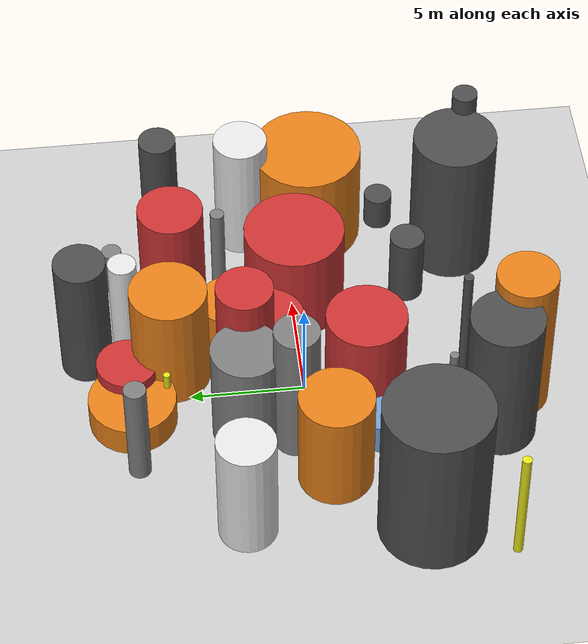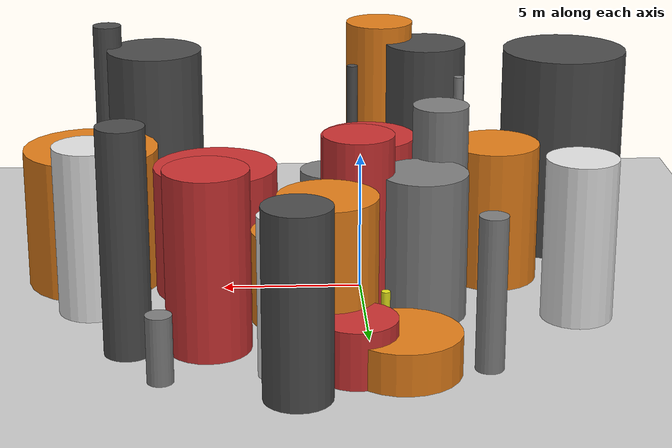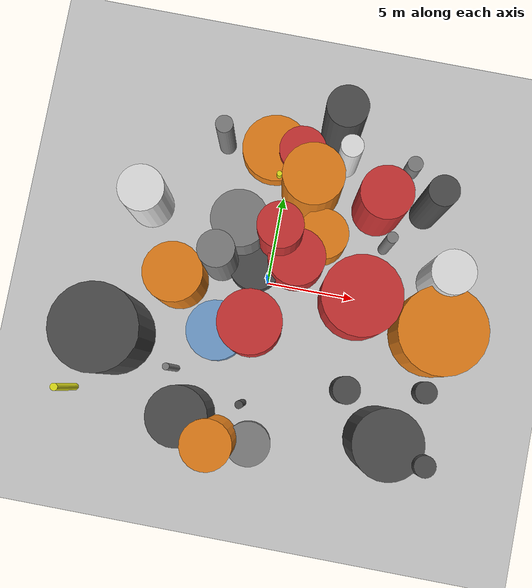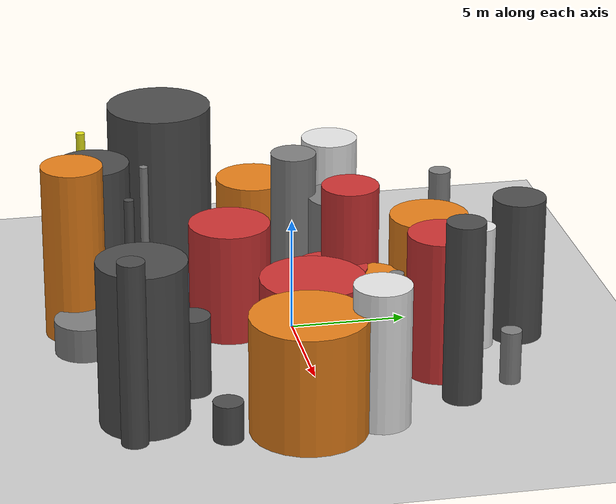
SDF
<?xml version='1.0'?>
<sdf version='1.6'>
  <world name='default'>
    <!-- Sun light -->
    <light name='sun' type='directional'>
      <cast_shadows>1</cast_shadows>
      <pose>0 0 10 0 0 0</pose>
      <diffuse>0.8 0.8 0.8 1</diffuse>
      <specular>0.2 0.2 0.2 1</specular>
      <attenuation>
        <range>1000</range>
        <constant>0.9</constant>
        <linear>0.01</linear>
        <quadratic>0.001</quadratic>
      </attenuation>
      <direction>-0.5 0.1 -0.9</direction>
    </light>

    <!-- Ground plane -->
    <model name='ground_plane'>
      <static>1</static>
      <link name='link'>
        <collision name='collision'>
          <geometry>
            <plane>
              <normal>0 0 1</normal>
              <size>100 100</size>
            </plane>
          </geometry>
          <surface>
            <contact>
              <collide_bitmask>65535</collide_bitmask>
              <ode/>
            </contact>
            <friction>
              <ode>
                <mu>100</mu>
                <mu2>50</mu2>
              </ode>
              <torsional><ode/></torsional>
            </friction>
            <bounce/>
          </surface>
          <max_contacts>10</max_contacts>
        </collision>
        <visual name='visual'>
          <cast_shadows>0</cast_shadows>
          <geometry>
            <plane>
              <normal>0 0 1</normal>
              <size>100 100</size>
            </plane>
          </geometry>
          <material>
            <script>
              <uri>file://media/materials/scripts/gazebo.material</uri>
              <n>Gazebo/Grey</n>
            </script>
          </material>
        </visual>
      </link>
    </model>

    <!-- Environment -->
    <magnetic_field>6e-06 2.3e-05 -4.2e-05</magnetic_field>
    <atmosphere type='adiabatic'/>
    <physics name='default_physics' default='0' type='ode'>
      <gravity>0 0 -9.8</gravity>
      <max_step_size>0.004</max_step_size>
      <real_time_factor>1</real_time_factor>
      <real_time_update_rate>250</real_time_update_rate>
    </physics>
    <scene>
      <ambient>0.4 0.4 0.4 1</ambient>
      <background>0.7 0.7 0.7 1</background>
      <shadows>1</shadows>
    </scene>
    <wind/>
    <spherical_coordinates>
      <surface_model>EARTH_WGS84</surface_model>
      <latitude_deg>0</latitude_deg>
      <longitude_deg>0</longitude_deg>
      <elevation>0</elevation>
      <heading_deg>0</heading_deg>
    </spherical_coordinates>

    <!-- ============ OBSTACLES (35) ============ -->
    <model name='obs_00'>
      <static>1</static>
      <link name='link'>
        <visual name='visual'>
          <geometry>
            <cylinder>
              <radius>0.2027</radius>
              <length>5.9736</length>
            </cylinder>
          </geometry>
          <material>
            <script>
              <n>Gazebo/Yellow</n>
              <uri>file://media/materials/scripts/gazebo.material</uri>
            </script>
            <ambient>0.9 0.9 0.1 1</ambient>
          </material>
        </visual>
        <collision name='collision'>
          <geometry>
            <cylinder>
              <radius>0.2027</radius>
              <length>5.9736</length>
            </cylinder>
          </geometry>
          <max_contacts>10</max_contacts>
          <surface>
            <contact><ode/></contact>
            <bounce/>
            <friction>
              <ode><mu>1</mu><mu2>1</mu2></ode>
              <torsional><ode/></torsional>
            </friction>
          </surface>
        </collision>
      </link>
      <pose>-9.7044 -7.9065 2.9868 0 0 2.7695</pose>
    </model>

    <model name='obs_01'>
      <static>1</static>
      <link name='link'>
        <visual name='visual'>
          <geometry>
            <cylinder>
              <radius>0.1514</radius>
              <length>2.1968</length>
            </cylinder>
          </geometry>
          <material>
            <script>
              <n>Gazebo/Yellow</n>
              <uri>file://media/materials/scripts/gazebo.material</uri>
            </script>
            <ambient>0.9 0.9 0.1 1</ambient>
          </material>
        </visual>
        <collision name='collision'>
          <geometry>
            <cylinder>
              <radius>0.1514</radius>
              <length>2.1968</length>
            </cylinder>
          </geometry>
          <max_contacts>10</max_contacts>
          <surface>
            <contact><ode/></contact>
            <bounce/>
            <friction>
              <ode><mu>1</mu><mu2>1</mu2></ode>
              <torsional><ode/></torsional>
            </friction>
          </surface>
        </collision>
      </link>
      <pose>-0.4543 6.0108 1.0984 0 0 1.8498</pose>
    </model>

    <model name='obs_02'>
      <static>1</static>
      <link name='link'>
        <visual name='visual'>
          <geometry>
            <cylinder>
              <radius>0.5633</radius>
              <length>7.9312</length>
            </cylinder>
          </geometry>
          <material>
            <script>
              <n>Gazebo/DarkGrey</n>
              <uri>file://media/materials/scripts/gazebo.material</uri>
            </script>
            <ambient>0.3 0.3 0.3 1</ambient>
          </material>
        </visual>
        <collision name='collision'>
          <geometry>
            <cylinder>
              <radius>0.5633</radius>
              <length>7.9312</length>
            </cylinder>
          </geometry>
          <max_contacts>10</max_contacts>
          <surface>
            <contact><ode/></contact>
            <bounce/>
            <friction>
              <ode><mu>1</mu><mu2>1</mu2></ode>
              <torsional><ode/></torsional>
            </friction>
          </surface>
        </collision>
      </link>
      <pose>9.5435 -8.2515 3.9656 0 0 2.5671</pose>
    </model>

    <model name='obs_03'>
      <static>1</static>
      <link name='link'>
        <visual name='visual'>
          <geometry>
            <cylinder>
              <radius>0.6280</radius>
              <length>5.4842</length>
            </cylinder>
          </geometry>
          <material>
            <script>
              <n>Gazebo/White</n>
              <uri>file://media/materials/scripts/gazebo.material</uri>
            </script>
            <ambient>0.9 0.9 0.9 1</ambient>
          </material>
        </visual>
        <collision name='collision'>
          <geometry>
            <cylinder>
              <radius>0.6280</radius>
              <length>5.4842</length>
            </cylinder>
          </geometry>
          <max_contacts>10</max_contacts>
          <surface>
            <contact><ode/></contact>
            <bounce/>
            <friction>
              <ode><mu>1</mu><mu2>1</mu2></ode>
              <torsional><ode/></torsional>
            </friction>
          </surface>
        </collision>
      </link>
      <pose>3.1915 7.5561 2.7421 0 0 0.0917</pose>
    </model>

    <model name='obs_04'>
      <static>1</static>
      <link name='link'>
        <visual name='visual'>
          <geometry>
            <cylinder>
              <radius>0.1883</radius>
              <length>6.3114</length>
            </cylinder>
          </geometry>
          <material>
            <script>
              <n>Gazebo/Grey</n>
              <uri>file://media/materials/scripts/gazebo.material</uri>
            </script>
            <ambient>0.5 0.5 0.5 1</ambient>
          </material>
        </visual>
        <collision name='collision'>
          <geometry>
            <cylinder>
              <radius>0.1883</radius>
              <length>6.3114</length>
            </cylinder>
          </geometry>
          <max_contacts>10</max_contacts>
          <surface>
            <contact><ode/></contact>
            <bounce/>
            <friction>
              <ode><mu>1</mu><mu2>1</mu2></ode>
              <torsional><ode/></torsional>
            </friction>
          </surface>
        </collision>
      </link>
      <pose>-4.2014 -5.7902 3.1557 0 0 1.3536</pose>
    </model>

    <model name='obs_05'>
      <static>1</static>
      <link name='link'>
        <visual name='visual'>
          <geometry>
            <cylinder>
              <radius>1.8626</radius>
              <length>7.1051</length>
            </cylinder>
          </geometry>
          <material>
            <script>
              <n>Gazebo/DarkGrey</n>
              <uri>file://media/materials/scripts/gazebo.material</uri>
            </script>
            <ambient>0.3 0.3 0.3 1</ambient>
          </material>
        </visual>
        <collision name='collision'>
          <geometry>
            <cylinder>
              <radius>1.8626</radius>
              <length>7.1051</length>
            </cylinder>
          </geometry>
          <max_contacts>10</max_contacts>
          <surface>
            <contact><ode/></contact>
            <bounce/>
            <friction>
              <ode><mu>1</mu><mu2>1</mu2></ode>
              <torsional><ode/></torsional>
            </friction>
          </surface>
        </collision>
      </link>
      <pose>7.6689 -7.5800 3.5525 0 0 0.1262</pose>
    </model>

    <model name='obs_06'>
      <static>1</static>
      <link name='link'>
        <visual name='visual'>
          <geometry>
            <cylinder>
              <radius>0.6296</radius>
              <length>1.6629</length>
            </cylinder>
          </geometry>
          <material>
            <script>
              <n>Gazebo/DarkGrey</n>
              <uri>file://media/materials/scripts/gazebo.material</uri>
            </script>
            <ambient>0.3 0.3 0.3 1</ambient>
          </material>
        </visual>
        <collision name='collision'>
          <geometry>
            <cylinder>
              <radius>0.6296</radius>
              <length>1.6629</length>
            </cylinder>
          </geometry>
          <max_contacts>10</max_contacts>
          <surface>
            <contact><ode/></contact>
            <bounce/>
            <friction>
              <ode><mu>1</mu><mu2>1</mu2></ode>
              <torsional><ode/></torsional>
            </friction>
          </surface>
        </collision>
      </link>
      <pose>9.8629 -4.5250 0.8314 0 0 2.9250</pose>
    </model>

    <model name='obs_07'>
      <static>1</static>
      <link name='link'>
        <visual name='visual'>
          <geometry>
            <cylinder>
              <radius>0.2138</radius>
              <length>6.4967</length>
            </cylinder>
          </geometry>
          <material>
            <script>
              <n>Gazebo/DarkGrey</n>
              <uri>file://media/materials/scripts/gazebo.material</uri>
            </script>
            <ambient>0.3 0.3 0.3 1</ambient>
          </material>
        </visual>
        <collision name='collision'>
          <geometry>
            <cylinder>
              <radius>0.2138</radius>
              <length>6.4967</length>
            </cylinder>
          </geometry>
          <max_contacts>10</max_contacts>
          <surface>
            <contact><ode/></contact>
            <bounce/>
            <friction>
              <ode><mu>1</mu><mu2>1</mu2></ode>
              <torsional><ode/></torsional>
            </friction>
          </surface>
        </collision>
      </link>
      <pose>-0.1267 -7.0074 3.2483 0 0 3.1089</pose>
    </model>

    <model name='obs_08'>
      <static>1</static>
      <link name='link'>
        <visual name='visual'>
          <geometry>
            <cylinder>
              <radius>1.4454</radius>
              <length>6.3007</length>
            </cylinder>
          </geometry>
          <material>
            <script>
              <n>Gazebo/Red</n>
              <uri>file://media/materials/scripts/gazebo.material</uri>
            </script>
            <ambient>0.8 0.2 0.2 1</ambient>
          </material>
        </visual>
        <collision name='collision'>
          <geometry>
            <cylinder>
              <radius>1.4454</radius>
              <length>6.3007</length>
            </cylinder>
          </geometry>
          <max_contacts>10</max_contacts>
          <surface>
            <contact><ode/></contact>
            <bounce/>
            <friction>
              <ode><mu>1</mu><mu2>1</mu2></ode>
              <torsional><ode/></torsional>
            </friction>
          </surface>
        </collision>
      </link>
      <pose>5.4160 5.2780 3.1504 0 0 2.6334</pose>
    </model>

    <model name='obs_09'>
      <static>1</static>
      <link name='link'>
        <visual name='visual'>
          <geometry>
            <cylinder>
              <radius>0.4438</radius>
              <length>2.3286</length>
            </cylinder>
          </geometry>
          <material>
            <script>
              <n>Gazebo/Grey</n>
              <uri>file://media/materials/scripts/gazebo.material</uri>
            </script>
            <ambient>0.5 0.5 0.5 1</ambient>
          </material>
        </visual>
        <collision name='collision'>
          <geometry>
            <cylinder>
              <radius>0.4438</radius>
              <length>2.3286</length>
            </cylinder>
          </geometry>
          <max_contacts>10</max_contacts>
          <surface>
            <contact><ode/></contact>
            <bounce/>
            <friction>
              <ode><mu>1</mu><mu2>1</mu2></ode>
              <torsional><ode/></torsional>
            </friction>
          </surface>
        </collision>
      </link>
      <pose>6.9528 7.9445 1.1643 0 0 1.9928</pose>
    </model>

    <model name='obs_10'>
      <static>1</static>
      <link name='link'>
        <visual name='visual'>
          <geometry>
            <cylinder>
              <radius>1.3351</radius>
              <length>7.7416</length>
            </cylinder>
          </geometry>
          <material>
            <script>
              <n>Gazebo/Orange</n>
              <uri>file://media/materials/scripts/gazebo.material</uri>
            </script>
            <ambient>0.9 0.5 0.1 1</ambient>
          </material>
        </visual>
        <collision name='collision'>
          <geometry>
            <cylinder>
              <radius>1.3351</radius>
              <length>7.7416</length>
            </cylinder>
          </geometry>
          <max_contacts>10</max_contacts>
          <surface>
            <contact><ode/></contact>
            <bounce/>
            <friction>
              <ode><mu>1</mu><mu2>1</mu2></ode>
              <torsional><ode/></torsional>
            </friction>
          </surface>
        </collision>
      </link>
      <pose>-1.3543 -9.2670 3.8708 0 0 2.3790</pose>
    </model>

    <model name='obs_11'>
      <static>1</static>
      <link name='link'>
        <visual name='visual'>
          <geometry>
            <cylinder>
              <radius>1.2668</radius>
              <length>5.8131</length>
            </cylinder>
          </geometry>
          <material>
            <script>
              <n>Gazebo/White</n>
              <uri>file://media/materials/scripts/gazebo.material</uri>
            </script>
            <ambient>0.9 0.9 0.9 1</ambient>
          </material>
        </visual>
        <collision name='collision'>
          <geometry>
            <cylinder>
              <radius>1.2668</radius>
              <length>5.8131</length>
            </cylinder>
          </geometry>
          <max_contacts>10</max_contacts>
          <surface>
            <contact><ode/></contact>
            <bounce/>
            <friction>
              <ode><mu>1</mu><mu2>1</mu2></ode>
              <torsional><ode/></torsional>
            </friction>
          </surface>
        </collision>
      </link>
      <pose>-7.4021 3.1853 2.9065 0 0 0.9909</pose>
    </model>

    <model name='obs_12'>
      <static>1</static>
      <link name='link'>
        <visual name='visual'>
          <geometry>
            <cylinder>
              <radius>0.7710</radius>
              <length>3.4545</length>
            </cylinder>
          </geometry>
          <material>
            <script>
              <n>Gazebo/DarkGrey</n>
              <uri>file://media/materials/scripts/gazebo.material</uri>
            </script>
            <ambient>0.3 0.3 0.3 1</ambient>
          </material>
        </visual>
        <collision name='collision'>
          <geometry>
            <cylinder>
              <radius>0.7710</radius>
              <length>3.4545</length>
            </cylinder>
          </geometry>
          <max_contacts>10</max_contacts>
          <surface>
            <contact><ode/></contact>
            <bounce/>
            <friction>
              <ode><mu>1</mu><mu2>1</mu2></ode>
              <torsional><ode/></torsional>
            </friction>
          </surface>
        </collision>
      </link>
      <pose>5.3550 -5.2282 1.7272 0 0 0.5038</pose>
    </model>

    <model name='obs_13'>
      <static>1</static>
      <link name='link'>
        <visual name='visual'>
          <geometry>
            <cylinder>
              <radius>0.9970</radius>
              <length>7.0183</length>
            </cylinder>
          </geometry>
          <material>
            <script>
              <n>Gazebo/Grey</n>
              <uri>file://media/materials/scripts/gazebo.material</uri>
            </script>
            <ambient>0.5 0.5 0.5 1</ambient>
          </material>
        </visual>
        <collision name='collision'>
          <geometry>
            <cylinder>
              <radius>0.9970</radius>
              <length>7.0183</length>
            </cylinder>
          </geometry>
          <max_contacts>10</max_contacts>
          <surface>
            <contact><ode/></contact>
            <bounce/>
            <friction>
              <ode><mu>1</mu><mu2>1</mu2></ode>
              <torsional><ode/></torsional>
            </friction>
          </surface>
        </collision>
      </link>
      <pose>-2.7921 0.6135 3.5092 0 0 0.2511</pose>
    </model>

    <model name='obs_14'>
      <static>1</static>
      <link name='link'>
        <visual name='visual'>
          <geometry>
            <cylinder>
              <radius>0.4858</radius>
              <length>5.3119</length>
            </cylinder>
          </geometry>
          <material>
            <script>
              <n>Gazebo/Grey</n>
              <uri>file://media/materials/scripts/gazebo.material</uri>
            </script>
            <ambient>0.5 0.5 0.5 1</ambient>
          </material>
        </visual>
        <collision name='collision'>
          <geometry>
            <cylinder>
              <radius>0.4858</radius>
              <length>5.3119</length>
            </cylinder>
          </geometry>
          <max_contacts>10</max_contacts>
          <surface>
            <contact><ode/></contact>
            <bounce/>
            <friction>
              <ode><mu>1</mu><mu2>1</mu2></ode>
              <torsional><ode/></torsional>
            </friction>
          </surface>
        </collision>
      </link>
      <pose>-3.7634 7.4764 2.6560 0 0 2.1366</pose>
    </model>

    <model name='obs_15'>
      <static>1</static>
      <link name='link'>
        <visual name='visual'>
          <geometry>
            <cylinder>
              <radius>1.7696</radius>
              <length>4.9570</length>
            </cylinder>
          </geometry>
          <material>
            <script>
              <n>Gazebo/Red</n>
              <uri>file://media/materials/scripts/gazebo.material</uri>
            </script>
            <ambient>0.8 0.2 0.2 1</ambient>
          </material>
        </visual>
        <collision name='collision'>
          <geometry>
            <cylinder>
              <radius>1.7696</radius>
              <length>4.9570</length>
            </cylinder>
          </geometry>
          <max_contacts>10</max_contacts>
          <surface>
            <contact><ode/></contact>
            <bounce/>
            <friction>
              <ode><mu>1</mu><mu2>1</mu2></ode>
              <torsional><ode/></torsional>
            </friction>
          </surface>
        </collision>
      </link>
      <pose>-0.4502 -2.6448 2.4785 0 0 1.7041</pose>
    </model>

    <model name='obs_16'>
      <static>1</static>
      <link name='link'>
        <visual name='visual'>
          <geometry>
            <cylinder>
              <radius>1.2496</radius>
              <length>6.5737</length>
            </cylinder>
          </geometry>
          <material>
            <script>
              <n>Gazebo/Red</n>
              <uri>file://media/materials/scripts/gazebo.material</uri>
            </script>
            <ambient>0.8 0.2 0.2 1</ambient>
          </material>
        </visual>
        <collision name='collision'>
          <geometry>
            <cylinder>
              <radius>1.2496</radius>
              <length>6.5737</length>
            </cylinder>
          </geometry>
          <max_contacts>10</max_contacts>
          <surface>
            <contact><ode/></contact>
            <bounce/>
            <friction>
              <ode><mu>1</mu><mu2>1</mu2></ode>
              <torsional><ode/></torsional>
            </friction>
          </surface>
        </collision>
      </link>
      <pose>0.2362 2.5130 3.2869 0 0 2.4588</pose>
    </model>

    <model name='obs_17'>
      <static>1</static>
      <link name='link'>
        <visual name='visual'>
          <geometry>
            <cylinder>
              <radius>1.9167</radius>
              <length>1.4402</length>
            </cylinder>
          </geometry>
          <material>
            <script>
              <n>Gazebo/Orange</n>
              <uri>file://media/materials/scripts/gazebo.material</uri>
            </script>
            <ambient>0.9 0.5 0.1 1</ambient>
          </material>
        </visual>
        <collision name='collision'>
          <geometry>
            <cylinder>
              <radius>1.9167</radius>
              <length>1.4402</length>
            </cylinder>
          </geometry>
          <max_contacts>10</max_contacts>
          <surface>
            <contact><ode/></contact>
            <bounce/>
            <friction>
              <ode><mu>1</mu><mu2>1</mu2></ode>
              <torsional><ode/></torsional>
            </friction>
          </surface>
        </collision>
      </link>
      <pose>-0.9557 7.5747 0.7201 0 0 0.0357</pose>
    </model>

    <model name='obs_18'>
      <static>1</static>
      <link name='link'>
        <visual name='visual'>
          <geometry>
            <cylinder>
              <radius>1.2076</radius>
              <length>6.0920</length>
            </cylinder>
          </geometry>
          <material>
            <script>
              <n>Gazebo/White</n>
              <uri>file://media/materials/scripts/gazebo.material</uri>
            </script>
            <ambient>0.9 0.9 0.9 1</ambient>
          </material>
        </visual>
        <collision name='collision'>
          <geometry>
            <cylinder>
              <radius>1.2076</radius>
              <length>6.0920</length>
            </cylinder>
          </geometry>
          <max_contacts>10</max_contacts>
          <surface>
            <contact><ode/></contact>
            <bounce/>
            <friction>
              <ode><mu>1</mu><mu2>1</mu2></ode>
              <torsional><ode/></torsional>
            </friction>
          </surface>
        </collision>
      </link>
      <pose>9.5844 1.8306 3.0460 0 0 0.4189</pose>
    </model>

    <model name='obs_19'>
      <static>1</static>
      <link name='link'>
        <visual name='visual'>
          <geometry>
            <cylinder>
              <radius>1.5060</radius>
              <length>1.4517</length>
            </cylinder>
          </geometry>
          <material>
            <script>
              <n>Gazebo/DarkGrey</n>
              <uri>file://media/materials/scripts/gazebo.material</uri>
            </script>
            <ambient>0.3 0.3 0.3 1</ambient>
          </material>
        </visual>
        <collision name='collision'>
          <geometry>
            <cylinder>
              <radius>1.5060</radius>
              <length>1.4517</length>
            </cylinder>
          </geometry>
          <max_contacts>10</max_contacts>
          <surface>
            <contact><ode/></contact>
            <bounce/>
            <friction>
              <ode><mu>1</mu><mu2>1</mu2></ode>
              <torsional><ode/></torsional>
            </friction>
          </surface>
        </collision>
      </link>
      <pose>-0.8680 0.8048 0.7258 0 0 2.3267</pose>
    </model>

    <model name='obs_20'>
      <static>1</static>
      <link name='link'>
        <visual name='visual'>
          <geometry>
            <cylinder>
              <radius>2.2295</radius>
              <length>4.6600</length>
            </cylinder>
          </geometry>
          <material>
            <script>
              <n>Gazebo/Red</n>
              <uri>file://media/materials/scripts/gazebo.material</uri>
            </script>
            <ambient>0.8 0.2 0.2 1</ambient>
          </material>
        </visual>
        <collision name='collision'>
          <geometry>
            <cylinder>
              <radius>2.2295</radius>
              <length>4.6600</length>
            </cylinder>
          </geometry>
          <max_contacts>10</max_contacts>
          <surface>
            <contact><ode/></contact>
            <bounce/>
            <friction>
              <ode><mu>1</mu><mu2>1</mu2></ode>
              <torsional><ode/></torsional>
            </friction>
          </surface>
        </collision>
      </link>
      <pose>5.2095 -0.1339 2.3300 0 0 2.9582</pose>
    </model>

    <model name='obs_21'>
      <static>1</static>
      <link name='link'>
        <visual name='visual'>
          <geometry>
            <cylinder>
              <radius>2.3354</radius>
              <length>7.6983</length>
            </cylinder>
          </geometry>
          <material>
            <script>
              <n>Gazebo/DarkGrey</n>
              <uri>file://media/materials/scripts/gazebo.material</uri>
            </script>
            <ambient>0.3 0.3 0.3 1</ambient>
          </material>
        </visual>
        <collision name='collision'>
          <geometry>
            <cylinder>
              <radius>2.3354</radius>
              <length>7.6983</length>
            </cylinder>
          </geometry>
          <max_contacts>10</max_contacts>
          <surface>
            <contact><ode/></contact>
            <bounce/>
            <friction>
              <ode><mu>1</mu><mu2>1</mu2></ode>
              <torsional><ode/></torsional>
            </friction>
          </surface>
        </collision>
      </link>
      <pose>-8.0516 -4.5271 3.8492 0 0 1.8070</pose>
    </model>

    <model name='obs_22'>
      <static>1</static>
      <link name='link'>
        <visual name='visual'>
          <geometry>
            <cylinder>
              <radius>1.5955</radius>
              <length>7.1022</length>
            </cylinder>
          </geometry>
          <material>
            <script>
              <n>Gazebo/DarkGrey</n>
              <uri>file://media/materials/scripts/gazebo.material</uri>
            </script>
            <ambient>0.3 0.3 0.3 1</ambient>
          </material>
        </visual>
        <collision name='collision'>
          <geometry>
            <cylinder>
              <radius>1.5955</radius>
              <length>7.1022</length>
            </cylinder>
          </geometry>
          <max_contacts>10</max_contacts>
          <surface>
            <contact><ode/></contact>
            <bounce/>
            <friction>
              <ode><mu>1</mu><mu2>1</mu2></ode>
              <torsional><ode/></torsional>
            </friction>
          </surface>
        </collision>
      </link>
      <pose>-3.1261 -8.1653 3.5511 0 0 1.9812</pose>
    </model>

    <model name='obs_23'>
      <static>1</static>
      <link name='link'>
        <visual name='visual'>
          <geometry>
            <cylinder>
              <radius>1.5566</radius>
              <length>5.2117</length>
            </cylinder>
          </geometry>
          <material>
            <script>
              <n>Gazebo/Grey</n>
              <uri>file://media/materials/scripts/gazebo.material</uri>
            </script>
            <ambient>0.5 0.5 0.5 1</ambient>
          </material>
        </visual>
        <collision name='collision'>
          <geometry>
            <cylinder>
              <radius>1.5566</radius>
              <length>5.2117</length>
            </cylinder>
          </geometry>
          <max_contacts>10</max_contacts>
          <surface>
            <contact><ode/></contact>
            <bounce/>
            <friction>
              <ode><mu>1</mu><mu2>1</mu2></ode>
              <torsional><ode/></torsional>
            </friction>
          </surface>
        </collision>
      </link>
      <pose>-2.0081 2.6594 2.6058 0 0 2.1721</pose>
    </model>

    <model name='obs_24'>
      <static>1</static>
      <link name='link'>
        <visual name='visual'>
          <geometry>
            <cylinder>
              <radius>1.2629</radius>
              <length>1.5049</length>
            </cylinder>
          </geometry>
          <material>
            <script>
              <n>Gazebo/Grey</n>
              <uri>file://media/materials/scripts/gazebo.material</uri>
            </script>
            <ambient>0.5 0.5 0.5 1</ambient>
          </material>
        </visual>
        <collision name='collision'>
          <geometry>
            <cylinder>
              <radius>1.2629</radius>
              <length>1.5049</length>
            </cylinder>
          </geometry>
          <max_contacts>10</max_contacts>
          <surface>
            <contact><ode/></contact>
            <bounce/>
            <friction>
              <ode><mu>1</mu><mu2>1</mu2></ode>
              <torsional><ode/></torsional>
            </friction>
          </surface>
        </collision>
      </link>
      <pose>0.6292 -9.1721 0.7524 0 0 0.6040</pose>
    </model>

    <model name='obs_25'>
      <static>1</static>
      <link name='link'>
        <visual name='visual'>
          <geometry>
            <cylinder>
              <radius>1.7050</radius>
              <length>1.5470</length>
            </cylinder>
          </geometry>
          <material>
            <script>
              <n>Gazebo/Blue</n>
              <uri>file://media/materials/scripts/gazebo.material</uri>
            </script>
            <ambient>0.447 0.624 0.812 1</ambient>
          </material>
        </visual>
        <collision name='collision'>
          <geometry>
            <cylinder>
              <radius>1.7050</radius>
              <length>1.5470</length>
            </cylinder>
          </geometry>
          <max_contacts>10</max_contacts>
          <surface>
            <contact><ode/></contact>
            <bounce/>
            <friction>
              <ode><mu>1</mu><mu2>1</mu2></ode>
              <torsional><ode/></torsional>
            </friction>
          </surface>
        </collision>
      </link>
      <pose>-2.3246 -3.2774 0.7735 0 0 1.3058</pose>
    </model>

    <model name='obs_26'>
      <static>1</static>
      <link name='link'>
        <visual name='visual'>
          <geometry>
            <cylinder>
              <radius>1.4078</radius>
              <length>3.3007</length>
            </cylinder>
          </geometry>
          <material>
            <script>
              <n>Gazebo/Orange</n>
              <uri>file://media/materials/scripts/gazebo.material</uri>
            </script>
            <ambient>0.9 0.5 0.1 1</ambient>
          </material>
        </visual>
        <collision name='collision'>
          <geometry>
            <cylinder>
              <radius>1.4078</radius>
              <length>3.3007</length>
            </cylinder>
          </geometry>
          <max_contacts>10</max_contacts>
          <surface>
            <contact><ode/></contact>
            <bounce/>
            <friction>
              <ode><mu>1</mu><mu2>1</mu2></ode>
              <torsional><ode/></torsional>
            </friction>
          </surface>
        </collision>
      </link>
      <pose>2.5817 2.9478 1.6504 0 0 2.3217</pose>
    </model>

    <model name='obs_27'>
      <static>1</static>
      <link name='link'>
        <visual name='visual'>
          <geometry>
            <cylinder>
              <radius>1.6087</radius>
              <length>3.3779</length>
            </cylinder>
          </geometry>
          <material>
            <script>
              <n>Gazebo/Red</n>
              <uri>file://media/materials/scripts/gazebo.material</uri>
            </script>
            <ambient>0.8 0.2 0.2 1</ambient>
          </material>
        </visual>
        <collision name='collision'>
          <geometry>
            <cylinder>
              <radius>1.6087</radius>
              <length>3.3779</length>
            </cylinder>
          </geometry>
          <max_contacts>10</max_contacts>
          <surface>
            <contact><ode/></contact>
            <bounce/>
            <friction>
              <ode><mu>1</mu><mu2>1</mu2></ode>
              <torsional><ode/></torsional>
            </friction>
          </surface>
        </collision>
      </link>
      <pose>1.3761 1.4188 1.6890 0 0 0.4674</pose>
    </model>

    <model name='obs_28'>
      <static>1</static>
      <link name='link'>
        <visual name='visual'>
          <geometry>
            <cylinder>
              <radius>2.4408</radius>
              <length>5.0779</length>
            </cylinder>
          </geometry>
          <material>
            <script>
              <n>Gazebo/Orange</n>
              <uri>file://media/materials/scripts/gazebo.material</uri>
            </script>
            <ambient>0.9 0.5 0.1 1</ambient>
          </material>
        </visual>
        <collision name='collision'>
          <geometry>
            <cylinder>
              <radius>2.4408</radius>
              <length>5.0779</length>
            </cylinder>
          </geometry>
          <max_contacts>10</max_contacts>
          <surface>
            <contact><ode/></contact>
            <bounce/>
            <friction>
              <ode><mu>1</mu><mu2>1</mu2></ode>
              <torsional><ode/></torsional>
            </friction>
          </surface>
        </collision>
      </link>
      <pose>9.7165 -1.1953 2.5389 0 0 1.4845</pose>
    </model>

    <model name='obs_29'>
      <static>1</static>
      <link name='link'>
        <visual name='visual'>
          <geometry>
            <cylinder>
              <radius>1.6286</radius>
              <length>5.1556</length>
            </cylinder>
          </geometry>
          <material>
            <script>
              <n>Gazebo/Orange</n>
              <uri>file://media/materials/scripts/gazebo.material</uri>
            </script>
            <ambient>0.9 0.5 0.1 1</ambient>
          </material>
        </visual>
        <collision name='collision'>
          <geometry>
            <cylinder>
              <radius>1.6286</radius>
              <length>5.1556</length>
            </cylinder>
          </geometry>
          <max_contacts>10</max_contacts>
          <surface>
            <contact><ode/></contact>
            <bounce/>
            <friction>
              <ode><mu>1</mu><mu2>1</mu2></ode>
              <torsional><ode/></torsional>
            </friction>
          </surface>
        </collision>
      </link>
      <pose>-4.9559 -0.8137 2.5778 0 0 2.6587</pose>
    </model>

    <model name='obs_30'>
      <static>1</static>
      <link name='link'>
        <visual name='visual'>
          <geometry>
            <cylinder>
              <radius>1.3450</radius>
              <length>1.9911</length>
            </cylinder>
          </geometry>
          <material>
            <script>
              <n>Gazebo/Red</n>
              <uri>file://media/materials/scripts/gazebo.material</uri>
            </script>
            <ambient>0.8 0.2 0.2 1</ambient>
          </material>
        </visual>
        <collision name='collision'>
          <geometry>
            <cylinder>
              <radius>1.3450</radius>
              <length>1.9911</length>
            </cylinder>
          </geometry>
          <max_contacts>10</max_contacts>
          <surface>
            <contact><ode/></contact>
            <bounce/>
            <friction>
              <ode><mu>1</mu><mu2>1</mu2></ode>
              <torsional><ode/></torsional>
            </friction>
          </surface>
        </collision>
      </link>
      <pose>0.5856 7.6699 0.9956 0 0 1.6003</pose>
    </model>

    <model name='obs_31'>
      <static>1</static>
      <link name='link'>
        <visual name='visual'>
          <geometry>
            <cylinder>
              <radius>0.3122</radius>
              <length>4.9939</length>
            </cylinder>
          </geometry>
          <material>
            <script>
              <n>Gazebo/Grey</n>
              <uri>file://media/materials/scripts/gazebo.material</uri>
            </script>
            <ambient>0.5 0.5 0.5 1</ambient>
          </material>
        </visual>
        <collision name='collision'>
          <geometry>
            <cylinder>
              <radius>0.3122</radius>
              <length>4.9939</length>
            </cylinder>
          </geometry>
          <max_contacts>10</max_contacts>
          <surface>
            <contact><ode/></contact>
            <bounce/>
            <friction>
              <ode><mu>1</mu><mu2>1</mu2></ode>
              <torsional><ode/></torsional>
            </friction>
          </surface>
        </collision>
      </link>
      <pose>6.1987 3.1819 2.4970 0 0 1.7123</pose>
    </model>

    <model name='obs_32'>
      <static>1</static>
      <link name='link'>
        <visual name='visual'>
          <geometry>
            <cylinder>
              <radius>1.7007</radius>
              <length>5.4621</length>
            </cylinder>
          </geometry>
          <material>
            <script>
              <n>Gazebo/Orange</n>
              <uri>file://media/materials/scripts/gazebo.material</uri>
            </script>
            <ambient>0.9 0.5 0.1 1</ambient>
          </material>
        </visual>
        <collision name='collision'>
          <geometry>
            <cylinder>
              <radius>1.7007</radius>
              <length>5.4621</length>
            </cylinder>
          </geometry>
          <max_contacts>10</max_contacts>
          <surface>
            <contact><ode/></contact>
            <bounce/>
            <friction>
              <ode><mu>1</mu><mu2>1</mu2></ode>
              <torsional><ode/></torsional>
            </friction>
          </surface>
        </collision>
      </link>
      <pose>1.4527 5.7026 2.7310 0 0 1.6165</pose>
    </model>

    <model name='obs_33'>
      <static>1</static>
      <link name='link'>
        <visual name='visual'>
          <geometry>
            <cylinder>
              <radius>1.1422</radius>
              <length>6.4239</length>
            </cylinder>
          </geometry>
          <material>
            <script>
              <n>Gazebo/DarkGrey</n>
              <uri>file://media/materials/scripts/gazebo.material</uri>
            </script>
            <ambient>0.3 0.3 0.3 1</ambient>
          </material>
        </visual>
        <collision name='collision'>
          <geometry>
            <cylinder>
              <radius>1.1422</radius>
              <length>6.4239</length>
            </cylinder>
          </geometry>
          <max_contacts>10</max_contacts>
          <surface>
            <contact><ode/></contact>
            <bounce/>
            <friction>
              <ode><mu>1</mu><mu2>1</mu2></ode>
              <torsional><ode/></torsional>
            </friction>
          </surface>
        </collision>
      </link>
      <pose>2.5601 9.3729 3.2119 0 0 1.8361</pose>
    </model>

    <model name='obs_34'>
      <static>1</static>
      <link name='link'>
        <visual name='visual'>
          <geometry>
            <cylinder>
              <radius>0.8183</radius>
              <length>7.8900</length>
            </cylinder>
          </geometry>
          <material>
            <script>
              <n>Gazebo/DarkGrey</n>
              <uri>file://media/materials/scripts/gazebo.material</uri>
            </script>
            <ambient>0.3 0.3 0.3 1</ambient>
          </material>
        </visual>
        <collision name='collision'>
          <geometry>
            <cylinder>
              <radius>0.8183</radius>
              <length>7.8900</length>
            </cylinder>
          </geometry>
          <max_contacts>10</max_contacts>
          <surface>
            <contact><ode/></contact>
            <bounce/>
            <friction>
              <ode><mu>1</mu><mu2>1</mu2></ode>
              <torsional><ode/></torsional>
            </friction>
          </surface>
        </collision>
      </link>
      <pose>8.1209 5.5738 3.9450 0 0 0.5888</pose>
    </model>

    <!-- GUI camera -->
    <gui fullscreen='0'>
      <camera name='user_camera'>
        <pose>-15 0 18 0 0.85 0.15</pose>
        <view_controller>orbit</view_controller>
        <projection_type>perspective</projection_type>
      </camera>
    </gui>
  </world>
</sdf>
